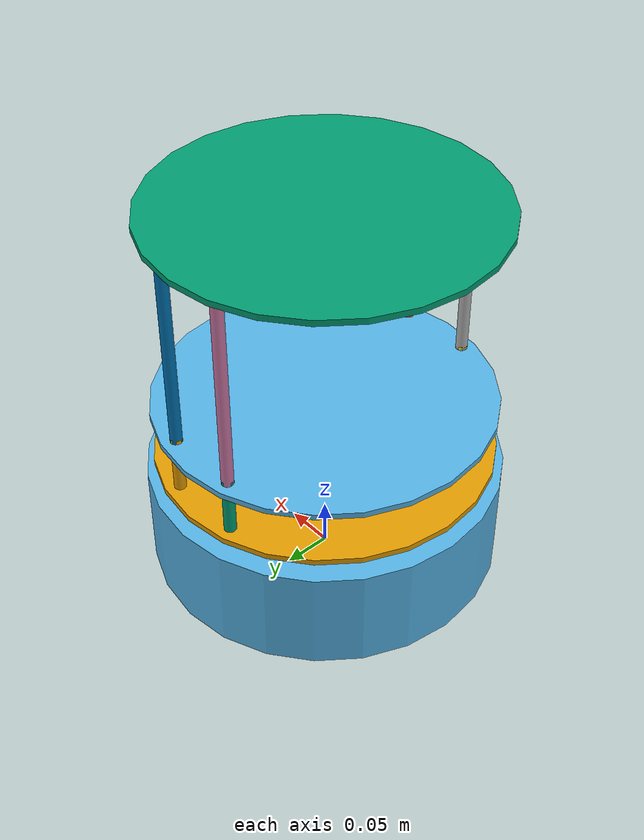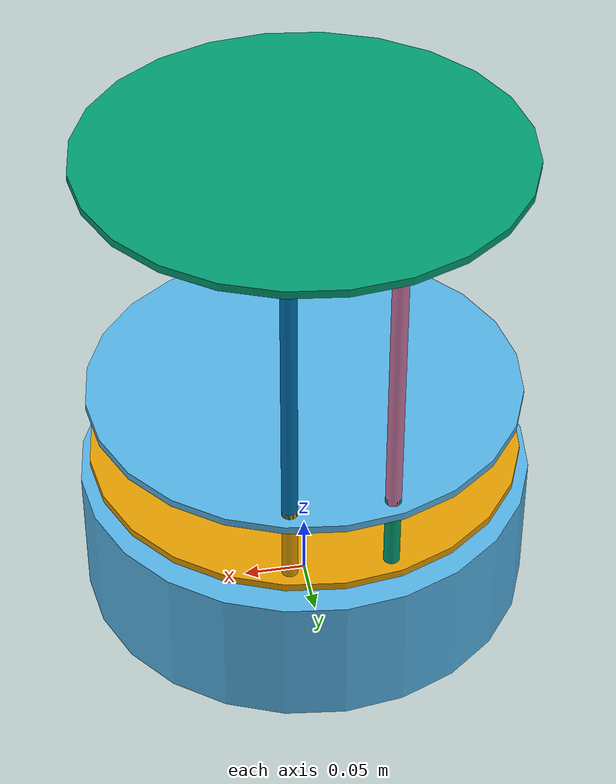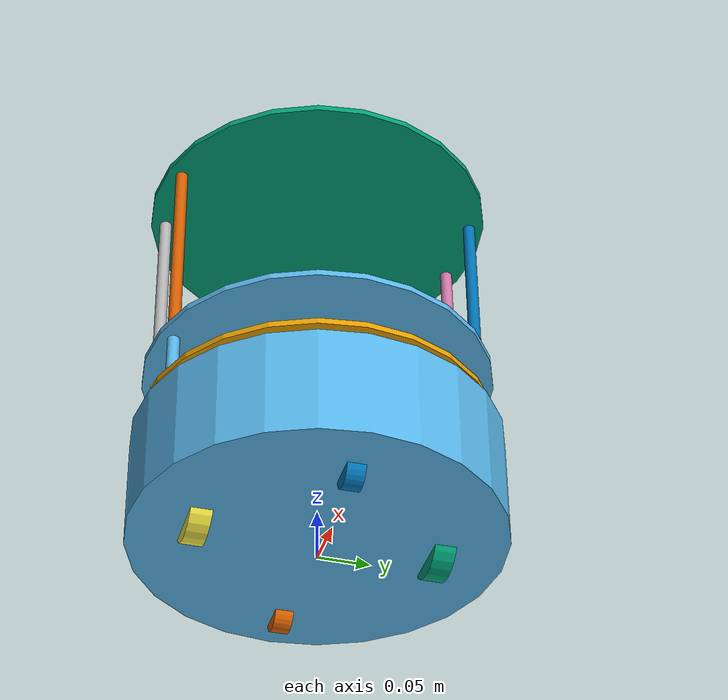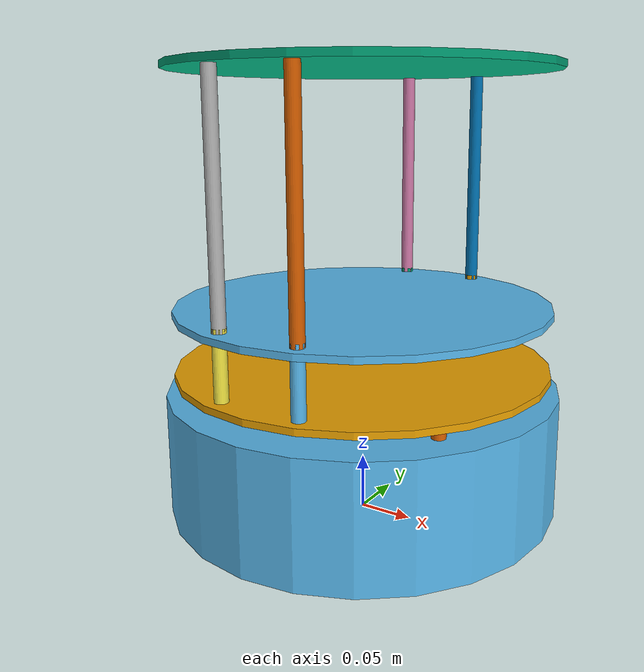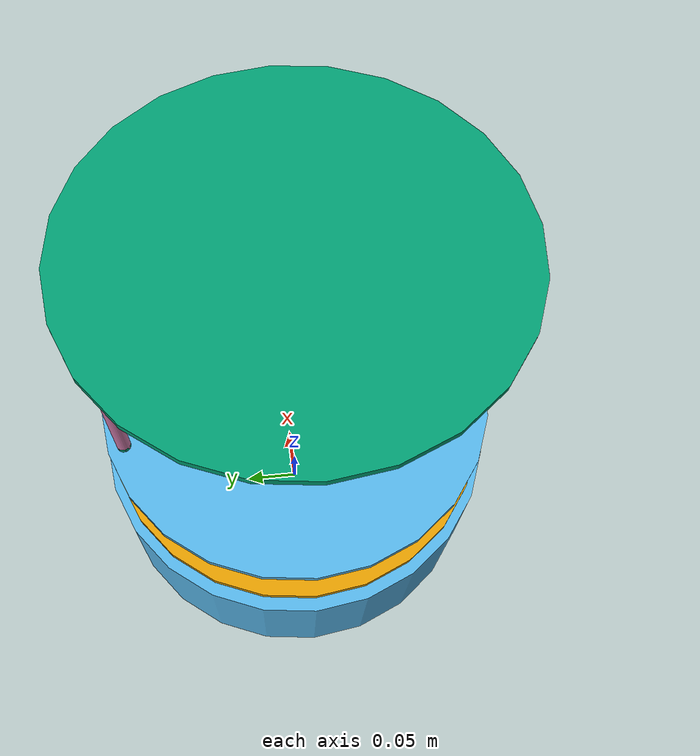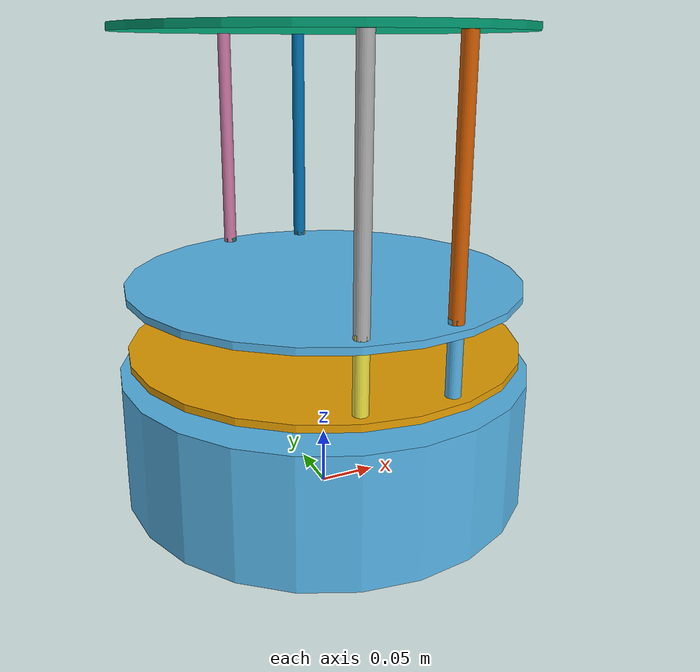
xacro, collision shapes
<?xml version="1.0"?>
<!--
  The common turtlebot library of xacros for easy reference
 -->

<robot name="prost_turtlebot">

  <!-- kobuki -->
  <link name="base_footprint"/>
  <joint name="base_joint" type="fixed">
  <origin xyz="0 0 0.0102" rpy="0 0 0" />
  <parent link="base_footprint"/>
  <child link="base_link" />
  </joint>
  <link name="base_link">
  <visual>
    <geometry>
      <!-- new mesh -->
      <mesh filename="package://kobuki_description/meshes/main_body.dae" />
    </geometry>
    <origin xyz="0.001 0 0.05199" rpy="0 0 0"/>
  </visual>
  <collision name="base">
    <geometry>
      <cylinder length="0.10938" radius="0.178"/>
    </geometry>
    <origin xyz="0.0 0 0.05949" rpy="0 0 0"/>
  </collision>
  <inertial>
    <!-- COM experimentally determined -->
    <origin xyz="0.01 0 0"/>
    <mass value="2.4"/> <!-- 2.4/2.6 kg for small/big battery pack -->
    <inertia ixx="0.019995" ixy="0.0" ixz="0.0"
             iyy="0.019995" iyz="0.0"
             izz="0.03675" />
  </inertial>
  </link>

  <joint name="wheel_left_joint" type="continuous">
  <parent link="base_link"/>
  <child link="wheel_left_link"/>
  <origin xyz="0.00 0.115 0.0250" rpy="-1.57 0 0"/>
  <axis xyz="0 0 1"/>
  </joint>
  <link name="wheel_left_link">
  <visual>
    <geometry>
      <mesh filename="package://kobuki_description/meshes/wheel.dae"/>
    </geometry>
    <origin xyz="0 0 0" rpy="0 0 0"/>
  </visual>
  <collision>
    <geometry>
      <cylinder length="0.0206" radius="0.0352"/>
    </geometry>
    <origin rpy="0 0 0" xyz="0 0 0"/>
  </collision>
  <inertial>
    <mass value="0.01" />
    <origin xyz="0 0 0" />
    <inertia ixx="0.001" ixy="0.0" ixz="0.0"
             iyy="0.001" iyz="0.0"
             izz="0.001" />
  </inertial>
  </link>

  <joint name="wheel_right_joint" type="continuous">
  <parent link="base_link"/>
  <child link="wheel_right_link"/>
  <origin xyz="0.00 -0.115 0.0250" rpy="-1.57 0 0"/>
  <axis xyz="0 0 1"/>
  </joint>
  <link name="wheel_right_link">
  <visual>
    <geometry>
      <mesh filename="package://kobuki_description/meshes/wheel.dae"/>
    </geometry>
    <origin xyz="0 0 0" rpy="0 0 0"/>
  </visual>
  <collision>
    <geometry>
      <cylinder length="0.0206" radius="0.0350"/>
    </geometry>
    <origin rpy="0 0 0" xyz="0 0 0"/>
  </collision>
  <inertial>
    <mass value="0.01" />
    <origin xyz="0 0 0" />
    <inertia ixx="0.001" ixy="0.0" ixz="0.0"
             iyy="0.001" iyz="0.0"
             izz="0.001" />
  </inertial>
  </link>

  <joint name="caster_front_joint" type="fixed">
  <parent link="base_link"/>
  <child link="caster_front_link"/>
  <origin xyz="0.115 0.0 0.007" rpy="-1.57 0 0"/>
  </joint>
  <link name="caster_front_link">
  <collision>
    <geometry>
      <cylinder length="0.0176" radius="0.017"/>
    </geometry>
    <origin rpy="0 0 0" xyz="0 0 0"/>
  </collision>
  <inertial>
    <mass value="0.01" />
    <origin xyz="0 0 0" />
    <inertia ixx="0.001" ixy="0.0" ixz="0.0"
             iyy="0.001" iyz="0.0"
             izz="0.001" />
  </inertial>
  </link>

  <joint name="caster_back_joint" type="fixed">
  <parent link="base_link"/>
  <child link="caster_back_link"/>
  <origin xyz="-0.135 0.0 0.009" rpy="-1.57 0 0"/>
  </joint>
  <link name="caster_back_link">
  <collision>
    <geometry>
      <cylinder length="0.0176" radius="0.017"/>
    </geometry>
    <origin rpy="0 0 0" xyz="0 0 0"/>
  </collision>
  <inertial>
    <mass value="0.01" />
    <origin xyz="0 0 0" />
    <inertia ixx="0.001" ixy="0.0" ixz="0.0"
             iyy="0.001" iyz="0.0"
             izz="0.001" />
  </inertial>
  </link>

  <!-- Kobuki's sensors -->
  <joint name="gyro_joint" type="fixed">
  <axis xyz="0 1 0"/>
  <origin xyz="0.056 0.062 0.0202" rpy="0 0 0"/>
  <parent link="base_link"/>
  <child link="gyro_link"/>
  </joint>
  <link name="gyro_link">
  <inertial>
    <mass value="0.001"/>
    <origin xyz="0 0 0" rpy="0 0 0"/>
    <inertia ixx="0.0001" ixy="0" ixz="0"
             iyy="0.000001" iyz="0"
             izz="0.0001"/>
  </inertial>
  </link>

  <joint name="cliff_sensor_left_joint" type="fixed">
  <origin xyz="0.08734 0.13601 0.0214" rpy="0 1.57 0" />
  <parent link="base_link"/>
  <child link="cliff_sensor_left_link" />
  </joint>
  <link name="cliff_sensor_left_link">
  <inertial>
    <mass value="0.0001" />
    <origin xyz="0 0 0" />
    <inertia ixx="0.0001" ixy="0.0" ixz="0.0"
             iyy="0.0001" iyz="0.0"
             izz="0.0001" />
  </inertial>
  </link>

  <joint name="cliff_sensor_right_joint" type="fixed">
  <origin xyz="0.085 -0.13601 0.0214" rpy="0 1.57 0" />
  <parent link="base_link"/>
  <child link="cliff_sensor_right_link" />
  </joint>
  <link name="cliff_sensor_right_link">
  <inertial>
    <mass value="0.0001" />
    <origin xyz="0 0 0" />
    <inertia ixx="0.0001" ixy="0.0" ixz="0.0"
             iyy="0.0001" iyz="0.0"
             izz="0.0001" />
  </inertial>
  </link>

  <joint name="cliff_sensor_front_joint" type="fixed">
  <origin xyz="0.156 0.00 0.0214" rpy="0 1.57 0" />
  <parent link="base_link"/>
  <child link="cliff_sensor_front_link" />
  </joint>
  <link name="cliff_sensor_front_link">
  <inertial>
    <mass value="0.0001" />
    <origin xyz="0 0 0" />
    <inertia ixx="0.0001" ixy="0.0" ixz="0.0"
             iyy="0.0001" iyz="0.0"
             izz="0.0001" />
  </inertial>
  </link>

  <!-- hexagons -->
  <joint name="pole_bottom_0_joint" type="fixed">
    <origin xyz="0.120 0.082 0.1028" rpy="0 0 0"/>
    <parent link="base_link"/>
    <child link="pole_bottom_0_link"/>
  </joint>

  <link name="pole_bottom_0_link">
    <visual>
      <origin xyz="0 0 0" rpy="0 0 0"/>
      <geometry>
        <mesh filename="package://turtlebot_description/meshes/stacks/hexagons/pole_bottom.dae"/>
      </geometry>
    </visual>
    <collision>
      <origin xyz="0 0 0" rpy="0 0 0"/>
      <geometry>
        <cylinder length="0.0492" radius="0.006"/>
      </geometry>
    </collision>
    <inertial>
      <mass value="0.008"/>
      <origin xyz="0 0 0" rpy="0 0 0"/>
      <inertia ixx="0.000001686" ixy="0.0" ixz="0.0"
               iyy="0.000001686" iyz="0.0"
               izz="0.000000144"/>
    </inertial>
  </link>

  <joint name="pole_bottom_1_joint" type="fixed">
    <origin xyz="0.055 0.120 0.1028" rpy="0 0 0"/>
    <parent link="base_link"/>
    <child link="pole_bottom_1_link"/>
  </joint>

  <link name="pole_bottom_1_link">
    <visual>
      <origin xyz="0 0 0" rpy="0 0 0"/>
      <geometry>
        <mesh filename="package://turtlebot_description/meshes/stacks/hexagons/pole_bottom.dae"/>
      </geometry>
    </visual>
    <collision>
      <origin xyz="0 0 0" rpy="0 0 0"/>
      <geometry>
        <cylinder length="0.0492" radius="0.006"/>
      </geometry>
    </collision>
    <inertial>
      <mass value="0.008"/>
      <origin xyz="0 0 0" rpy="0 0 0"/>
      <inertia ixx="0.000001686" ixy="0.0" ixz="0.0"
               iyy="0.000001686" iyz="0.0"
               izz="0.000000144"/>
    </inertial>
  </link>

  <joint name="pole_bottom_2_joint" type="fixed">
    <origin xyz="-0.055 0.120 0.1028" rpy="0 0 0"/>
    <parent link="base_link"/>
    <child link="pole_bottom_2_link"/>
  </joint>

  <link name="pole_bottom_2_link">
    <visual>
      <origin xyz="0 0 0" rpy="0 0 0"/>
      <geometry>
        <mesh filename="package://turtlebot_description/meshes/stacks/hexagons/pole_bottom.dae"/>
      </geometry>
    </visual>
    <collision>
      <origin xyz="0 0 0" rpy="0 0 0"/>
      <geometry>
        <cylinder length="0.0492" radius="0.006"/>
      </geometry>
    </collision>
    <inertial>
      <mass value="0.008"/>
      <origin xyz="0 0 0" rpy="0 0 0"/>
      <inertia ixx="0.000001686" ixy="0.0" ixz="0.0"
               iyy="0.000001686" iyz="0.0"
               izz="0.000000144"/>
    </inertial>
  </link>

  <joint name="pole_bottom_3_joint" type="fixed">
    <origin xyz="0.120 -0.082 0.1028" rpy="0 0 0"/>
    <parent link="base_link"/>
    <child link="pole_bottom_3_link"/>
  </joint>
  <link name="pole_bottom_3_link">
    <visual>
      <origin xyz="0 0 0" rpy="0 0 0"/>
      <geometry>
        <mesh filename="package://turtlebot_description/meshes/stacks/hexagons/pole_bottom.dae"/>
      </geometry>
    </visual>
    <collision>
      <origin xyz="0 0 0" rpy="0 0 0"/>
      <geometry>
        <cylinder length="0.0492" radius="0.006"/>
      </geometry>
    </collision>
    <inertial>
      <mass value="0.008"/>
      <origin xyz="0 0 0" rpy="0 0 0"/>
      <inertia ixx="0.000001686" ixy="0.0" ixz="0.0"
               iyy="0.000001686" iyz="0.0"
               izz="0.000000144"/>
    </inertial>
  </link>

  <joint name="pole_bottom_4_joint" type="fixed">
    <origin xyz="0.055 -0.120 0.1028" rpy="0 0 0"/>
    <parent link="base_link"/>
    <child link="pole_bottom_4_link"/>
  </joint>

  <link name="pole_bottom_4_link">
    <visual>
      <origin xyz="0 0 0" rpy="0 0 0"/>
      <geometry>
        <mesh filename="package://turtlebot_description/meshes/stacks/hexagons/pole_bottom.dae"/>
      </geometry>
    </visual>
    <collision>
      <origin xyz="0 0 0" rpy="0 0 0"/>
      <geometry>
        <cylinder length="0.0492" radius="0.006"/>
      </geometry>
    </collision>
    <inertial>
      <mass value="0.008"/>
      <origin xyz="0 0 0" rpy="0 0 0"/>
      <inertia ixx="0.000001686" ixy="0.0" ixz="0.0"
               iyy="0.000001686" iyz="0.0"
               izz="0.000000144"/>
    </inertial>
  </link>

  <joint name="pole_bottom_5_joint" type="fixed">
    <origin xyz="-0.055 -0.120 0.1028" rpy="0 0 0"/>
    <parent link="base_link"/>
    <child link="pole_bottom_5_link"/>
  </joint>

  <link name="pole_bottom_5_link">
    <visual>
      <origin xyz="0 0 0" rpy="0 0 0"/>
      <geometry>
        <mesh filename="package://turtlebot_description/meshes/stacks/hexagons/pole_bottom.dae"/>
      </geometry>
    </visual>
    <collision>
      <origin xyz="0 0 0" rpy="0 0 0"/>
      <geometry>
        <cylinder length="0.0492" radius="0.006"/>
      </geometry>
    </collision>
    <inertial>
      <mass value="0.008"/>
      <origin xyz="0 0 0" rpy="0 0 0"/>
      <inertia ixx="0.000001686" ixy="0.0" ixz="0.0"
               iyy="0.000001686" iyz="0.0"
               izz="0.000000144"/>
    </inertial>
  </link>

  <!-- pole_middle -->
  <joint name="pole_middle_0_joint" type="fixed">
    <origin xyz="0.0381 0.1505 0.1640" rpy="0 0 0" />
    <parent link="base_link"/>
    <child link="pole_middle_0_link"/>
  </joint>

  <link name="pole_middle_0_link">
    <visual>
      <origin xyz="0 0 0" rpy="0 3.1415926535897931 0"/>
      <geometry>
        <mesh filename="package://turtlebot_description/meshes/stacks/hexagons/pole_middle.dae"/>
      </geometry>
    </visual>
    <collision>
      <origin xyz="0 0 0" rpy="0 0 0"/>
      <geometry>
        <cylinder length="0.0608" radius="0.006"/>
      </geometry>
    </collision>
    <inertial>
      <mass value="0.012"/>
      <origin xyz="0 0 0"/>
      <inertia ixx="0.000003805" ixy="0.0" ixz="0.0"
               iyy="0.000003805" iyz="0.0"
               izz="0.000000216"/>
    </inertial>
  </link>

  <joint name="pole_middle_1_joint" type="fixed">
    <origin xyz="0.0381 -0.1505 0.1640" rpy="0 0 0" />
    <parent link="base_link"/>
    <child link="pole_middle_1_link"/>
  </joint>

  <link name="pole_middle_1_link">
    <visual>
      <origin xyz="0 0 0" rpy="0 3.1415926535897931 0"/>
      <geometry>
        <mesh filename="package://turtlebot_description/meshes/stacks/hexagons/pole_middle.dae"/>
      </geometry>
    </visual>
    <collision>
      <origin xyz="0 0 0" rpy="0 0 0"/>
      <geometry>
        <cylinder length="0.0608" radius="0.006"/>
      </geometry>
    </collision>
    <inertial>
      <mass value="0.012"/>
      <origin xyz="0 0 0"/>
      <inertia ixx="0.000003805" ixy="0.0" ixz="0.0"
               iyy="0.000003805" iyz="0.0"
               izz="0.000000216"/>
    </inertial>
  </link>

  <joint name="pole_middle_2_joint" type="fixed">
    <origin xyz="-0.0381 0.1505 0.1640" rpy="0 0 0" />
    <parent link="base_link"/>
    <child link="pole_middle_2_link"/>
  </joint>

  <link name="pole_middle_2_link">
    <visual>
      <origin xyz="0 0 0" rpy="0 3.1415926535897931 0"/>
      <geometry>
        <mesh filename="package://turtlebot_description/meshes/stacks/hexagons/pole_middle.dae"/>
      </geometry>
    </visual>
    <collision>
      <origin xyz="0 0 0" rpy="0 0 0"/>
      <geometry>
        <cylinder length="0.0608" radius="0.006"/>
      </geometry>
    </collision>
    <inertial>
      <mass value="0.012"/>
      <origin xyz="0 0 0"/>
      <inertia ixx="0.000003805" ixy="0.0" ixz="0.0"
               iyy="0.000003805" iyz="0.0"
               izz="0.000000216"/>
    </inertial>
  </link>

  <joint name="pole_middle_3_joint" type="fixed">
    <origin xyz="-0.0381 -0.1505 0.1640" rpy="0 0 0" />
    <parent link="base_link"/>
    <child link="pole_middle_3_link"/>
  </joint>

  <link name="pole_middle_3_link">
    <visual>
      <origin xyz="0 0 0" rpy="0 3.1415926535897931 0"/>
      <geometry>
        <mesh filename="package://turtlebot_description/meshes/stacks/hexagons/pole_middle.dae"/>
      </geometry>
    </visual>
    <collision>
      <origin xyz="0 0 0" rpy="0 0 0"/>
      <geometry>
        <cylinder length="0.0608" radius="0.006"/>
      </geometry>
    </collision>
    <inertial>
      <mass value="0.012"/>
      <origin xyz="0 0 0"/>
      <inertia ixx="0.000003805" ixy="0.0" ixz="0.0"
               iyy="0.000003805" iyz="0.0"
               izz="0.000000216"/>
    </inertial>
  </link>

  <!-- pole_top -->

  <joint name="pole_top_0_joint" type="fixed">
    <origin xyz="0.0381 0.1505 0.2920" rpy="0 0 0"/>
    <parent link="base_link"/>
    <child link="pole_top_0_link"/>
  </joint>

  <link name="pole_top_0_link">
    <visual>
      <origin xyz=" 0 0 0" rpy="0 0 0"/>
      <geometry>
        <mesh filename="package://turtlebot_description/meshes/stacks/hexagons/pole_top.dae"/>
      </geometry>
    </visual>
    <collision>
      <origin xyz="0 0 0" rpy="0 0 0"/>
      <geometry>
        <cylinder length="0.2032" radius="0.006"/>
      </geometry>
    </collision>
    <inertial>
      <mass value="0.060"/>
      <origin xyz="0 0 0"/>
      <inertia ixx="0.000206991" ixy="0.0" ixz="0.0"
               iyy="0.000206991" iyz="0.0"
               izz="0.000001080"/>
    </inertial>
  </link>

  <joint name="pole_top_1_joint" type="fixed">
    <origin xyz="0.0381 -0.1505 0.2920" rpy="0 0 0"/>
    <parent link="base_link"/>
    <child link="pole_top_1_link"/>
  </joint>

  <link name="pole_top_1_link">
    <visual>
      <origin xyz=" 0 0 0" rpy="0 0 0"/>
      <geometry>
        <mesh filename="package://turtlebot_description/meshes/stacks/hexagons/pole_top.dae"/>
      </geometry>
    </visual>
    <collision>
      <origin xyz="0 0 0" rpy="0 0 0"/>
      <geometry>
        <cylinder length="0.2032" radius="0.006"/>
      </geometry>
    </collision>
    <inertial>
      <mass value="0.060"/>
      <origin xyz="0 0 0"/>
      <inertia ixx="0.000206991" ixy="0.0" ixz="0.0"
               iyy="0.000206991" iyz="0.0"
               izz="0.000001080"/>
    </inertial>
  </link>

  <joint name="pole_top_2_joint" type="fixed">
    <origin xyz="-0.0381 0.1505 0.2920" rpy="0 0 0"/>
    <parent link="base_link"/>
    <child link="pole_top_2_link"/>
  </joint>

  <link name="pole_top_2_link">
    <visual>
      <origin xyz=" 0 0 0" rpy="0 0 0"/>
      <geometry>
        <mesh filename="package://turtlebot_description/meshes/stacks/hexagons/pole_top.dae"/>
      </geometry>
    </visual>
    <collision>
      <origin xyz="0 0 0" rpy="0 0 0"/>
      <geometry>
        <cylinder length="0.2032" radius="0.006"/>
      </geometry>
    </collision>
    <inertial>
      <mass value="0.060"/>
      <origin xyz="0 0 0"/>
      <inertia ixx="0.000206991" ixy="0.0" ixz="0.0"
               iyy="0.000206991" iyz="0.0"
               izz="0.000001080"/>
    </inertial>
  </link>

  <joint name="pole_top_3_joint" type="fixed">
    <origin xyz="-0.0381 -0.1505 0.2920" rpy="0 0 0"/>
    <parent link="base_link"/>
    <child link="pole_top_3_link"/>
  </joint>

  <link name="pole_top_3_link">
    <visual>
      <origin xyz=" 0 0 0" rpy="0 0 0"/>
      <geometry>
        <mesh filename="package://turtlebot_description/meshes/stacks/hexagons/pole_top.dae"/>
      </geometry>
    </visual>
    <collision>
      <origin xyz="0 0 0" rpy="0 0 0"/>
      <geometry>
        <cylinder length="0.2032" radius="0.006"/>
      </geometry>
    </collision>
    <inertial>
      <mass value="0.060"/>
      <origin xyz="0 0 0"/>
      <inertia ixx="0.000206991" ixy="0.0" ixz="0.0"
               iyy="0.000206991" iyz="0.0"
               izz="0.000001080"/>
    </inertial>
  </link>

  <joint name="plate_bottom_joint" type="fixed">
    <origin xyz="0.02364 0.0 0.1306" rpy="0 0 0"/>
    <parent link="base_link"/>
    <child link="plate_bottom_link"/>
  </joint>

  <link name="plate_bottom_link">
    <visual>
      <origin xyz="0 0 0" rpy="0 0 0"/>
      <geometry>
        <mesh filename="package://turtlebot_description/meshes/stacks/hexagons/plate_bottom.dae"/>
      </geometry>
    </visual>
    <collision>
      <origin xyz="-0.02364 0 0" rpy="0 0 0"/>
      <geometry>
        <cylinder length="0.006" radius="0.170"/>
      </geometry>
    </collision>
    <inertial>
      <mass value="0.520" />
      <origin xyz="0 0 0" />
      <inertia ixx="0.003328" ixy="0.0" ixz="0.0"
               iyy="0.003328" iyz="0.0"
               izz="0.006656" />
    </inertial>
  </link>

  <joint name="plate_middle_joint" type="fixed">
    <origin xyz="-0.01364 0.0 0.1874" rpy="0 0 0"/>
    <parent link="base_link"/>
    <child link="plate_middle_link"/>
  </joint>

  <link name="plate_middle_link">
    <visual>
      <origin xyz="0 0 0" rpy="0 0 0"/>
      <geometry>
        <mesh filename="package://turtlebot_description/meshes/stacks/hexagons/plate_middle.dae"/>
      </geometry>
    </visual>
    <collision>
      <origin xyz="0.01364 0.0 0.0" rpy="0 0 0"/>
      <geometry>
        <cylinder length="0.006" radius="0.170"/>
      </geometry>
    </collision>
    <inertial>
      <mass value="0.520" />
      <origin xyz="0 0 0" />
      <inertia ixx="0.003328" ixy="0.0" ixz="0.0"
               iyy="0.003328" iyz="0.0"
               izz="0.006656" />
    </inertial>
  </link>

  <joint name="plate_top_joint" type="fixed">
    <origin xyz="-0.01364 0.0  0.3966" rpy="0 0 0"/>
    <parent link="base_link"/>
    <child link="plate_top_link"/>
  </joint>

  <link name="plate_top_link">
    <visual>
      <origin xyz="0 0 0" rpy="0 0 0"/>
      <geometry>
        <mesh filename="package://turtlebot_description/meshes/stacks/hexagons/plate_top.dae"/>
      </geometry>
    </visual>
    <collision>
      <origin xyz="0.01364 0 0" rpy="0 0 0"/>
      <geometry>
        <cylinder length="0.006" radius="0.170"/>
      </geometry>
    </collision>
    <inertial>
      <mass value="0.520"/>
      <origin xyz="0 0 0"/>
      <inertia ixx="0.003328" ixy="0.0" ixz="0.0"
               iyy="0.003328" iyz="0.0"
               izz="0.006656" />
    </inertial>
  </link>

  <!-- cam_link -->
    <link name="cam_link">
      <visual>
        <geometry>
          <box size="0.065 0.1 0.055"/>
        </geometry>
        <origin xyz="0 0 0" rpy="0 0 0"/>
        <material name="black">
          <color rgba="0.0 0.0 0.0 1.0"/>
        </material>
      </visual>
    </link>
    <joint name="cam_joint" type="fixed">
      <parent link="plate_top_link"/>
      <child  link="cam_link"/>
      <origin rpy="0 0 0" xyz="0.11 0.0 0.0275"/>
       <axis xyz="0 0 1"/>
       <limit effort="30" lower="-3.14" upper="3.14" velocity="1.571"/>
    </joint>

    <!-- cam_rgb_link -->
    <link name="cam_rgb_link"/>
    <joint name="cam_rgb_joint" type="fixed">
      <parent link="cam_link"/>
      <child link="cam_rgb_link"/>
      <origin rpy="0 0 0" xyz="0.0 0.0 0.0125"/>
       <axis xyz="0 0 1"/>
       <limit effort="30" lower="-3.14" upper="3.14" velocity="1.571"/>
    </joint>

</robot>
